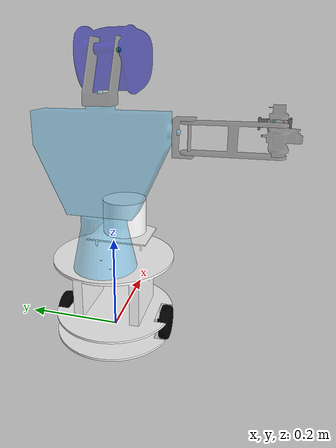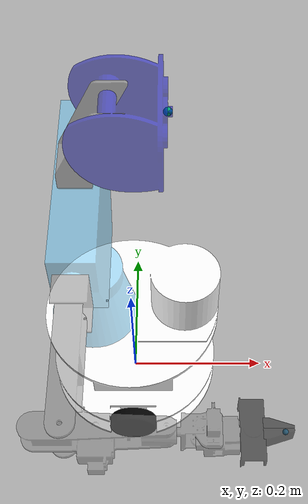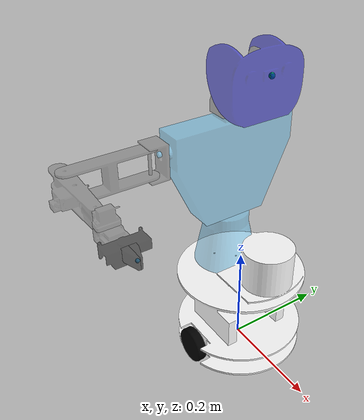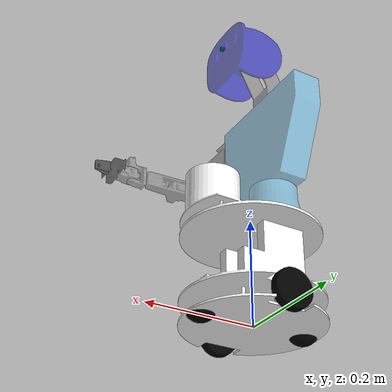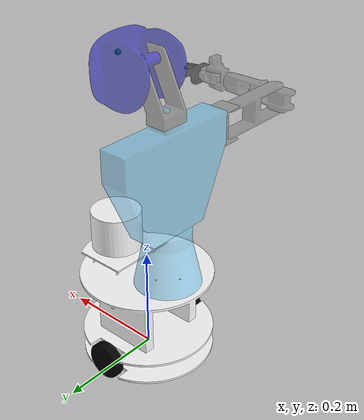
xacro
<?xml version="1.0"?>

<robot name="fratomo" xmlns:xacro="http://ros.org/wiki/xacro">
    <xacro:include filename="$(find fratomo_pro_description)/urdf/fratomo_base_macro.xacro" />
    <xacro:include filename="$(find fratomo_pro_description)/urdf/fratomo_torso_macro.xacro" />

    <xacro:property name="CAMERA" value="True"/>
    <xacro:property name="LIDAR" value="True"/>
    <xacro:property name="DEPTH" value="True"/>

    <!-- Diff Drive Robot Base  -->
    <xacro:fratomo_base />
     <!-- Robot Torso  -->
    <xacro:fratomo_torso parent="base_link"/>

    <!-- Head CAMERA Sensor -->
    <xacro:if value="${CAMERA}" >
        <!--Gazebo y-right/z-up camera frame is inconsistent with rviz/opencv x-right/y-down frame/-->
        <joint name="camViewFix" type="fixed">
            <parent link="camera"/>
            <child link="camera_view"/>
            <origin rpy="0 -1.57075 1.57075"  xyz="0.0 0.0 0.0 "/>
        </joint>
        <link name="camera_view"/>
        <gazebo reference="camera_view">
            <sensor type="camera" name="camera1">
                <update_rate>30.0</update_rate>
                <camera name="head">
                <horizontal_fov>1.3962634</horizontal_fov>
                <image>
                  <width>800</width>
                  <height>600</height>
                  <format>R8G8B8</format>
                </image>
                <clip>
                  <near>0.02</near>
                  <far>300</far>
                </clip>
                <noise>
                  <type>gaussian</type>
                  <mean>0.0</mean>
                  <stddev>0.007</stddev>
                </noise>
                </camera>

                <plugin name="camera_controller" filename="libgazebo_ros_camera.so">
                <alwaysOn>true</alwaysOn>
                <updateRate>0.0</updateRate>
                <cameraName>/headCam</cameraName>
                <imageTopicName>image_raw</imageTopicName>
                <cameraInfoTopicName>camera_info</cameraInfoTopicName>
                <frameName>camera_view</frameName>
                <hackBaseline>0.07</hackBaseline>
                <distortionK1>0.0</distortionK1>
                <distortionK2>0.0</distortionK2>
                <distortionK3>0.0</distortionK3>
                <distortionT1>0.0</distortionT1>
                <distortionT2>0.0</distortionT2>
                </plugin>
            </sensor>
        </gazebo>
    </xacro:if>

    <!-- LIDAR Sensor -->
     <xacro:if value="${LIDAR}" >

        <!--publish laser frame on the base -->
        <joint name="laser_joint" type="fixed">
            <parent link="base_link"/>
            <child link="laser_frame"/>
            <origin rpy="0 ${M_PI} ${M_PI}"  xyz="0.075 0.0 0.265 "/>
        </joint>
        <link name="laser_frame"/>

        <gazebo reference="laser_frame">
            <sensor type="ray" name="head_hokuyo_sensor">
                <pose>0 0 0 0 0 0</pose>
                <visualize>false</visualize>
                <update_rate>40</update_rate>
                <ray>
                    <scan>
                      <horizontal>
                        <samples>720</samples>
                        <resolution>1</resolution>
                        <min_angle>-${M_PI} </min_angle>
                        <max_angle>${M_PI} </max_angle>
                      </horizontal>
                    </scan>
                    <range>
                      <min>0.8</min>
                      <max>30.0</max>
                      <resolution>0.01</resolution>
                    </range>
                    <noise>
                      <type>gaussian</type>
                      <mean>0.0</mean>
                      <stddev>0.01</stddev>
                    </noise>
                </ray>
                <plugin name="gazebo_ros_head_hokuyo_controller" filename="libgazebo_ros_laser.so">
                    <topicName>/laser/scan</topicName>
                    <frameName>laser_frame</frameName>
                </plugin>
            </sensor>
        </gazebo>
    </xacro:if>

 <!-- RGBD Sensor -->
    <xacro:if value="${DEPTH}" >

        <!--publish rgbd frame on the base -->
        <joint name="rgbd_joint" type="fixed">
            <parent link="camera_view"/>
            <child link="rgbd_frame"/>
            <origin rpy="0 0 0"  xyz=" 0 0 0"/>
        </joint>
        <link name="rgbd_frame"/>
        <!-- Fixing opitcal frame problem -->
        <joint name="rgbd__optical_joint" type="fixed">
            <parent link="rgbd_frame"/>
            <child link="rgbd_optical_frame"/>
            <origin rpy="-${M_PI_2} 0 -${M_PI_2} "  xyz=" 0 0 0"/>
        </joint>
        <link name="rgbd_optical_frame"/>

        <gazebo reference="rgbd_frame">
         <sensor type="depth" name="$depth_camera">
            <always_on>true</always_on>
            <update_rate>30.0</update_rate>
            <camera>
              <horizontal_fov>2</horizontal_fov>
              <image>
                <format>L8</format>
                <width>640</width>
                <height>480</height>
              </image>
              <clip>
                <near>0.01</near>
                <far>100</far>
              </clip>
            </camera>
            <plugin name="depth_camera_plugin" filename="libgazebo_ros_openni_kinect.so">
              <alwaysOn>true</alwaysOn>
              <baseline>0.11</baseline>
              <updateRate>30.0</updateRate>
              <cameraName>depth_camera</cameraName>
              <imageTopicName>depth_camera/image_raw</imageTopicName>
              <cameraInfoTopicName>depth_camera/camera_info</cameraInfoTopicName>
              <depthImageTopicName>depth/disparity</depthImageTopicName>
              <depthImageCameraInfoTopicName>depth/camera_info</depthImageCameraInfoTopicName>
              <pointCloudTopicName>depth/points</pointCloudTopicName>
              <frameName>rgbd_optical_frame</frameName>
              <pointCloudCutoff>0.5</pointCloudCutoff>
              <distortionK1>0.0</distortionK1>
              <distortionK2>0.0</distortionK2>
              <distortionK3>0.0</distortionK3>
              <distortionT1>0.0</distortionT1>
              <distortionT2>0.0</distortionT2>
            </plugin>
          </sensor>
        </gazebo>
    </xacro:if>

</robot>

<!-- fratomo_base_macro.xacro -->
<robot name="fratomo_base_macro" xmlns:xacro="http://www.ros.org/wiki/xacro">

  <!--All units in m-kg-s-radians unit system -->
  <xacro:property name="M_PI" value="3.1415926535897931" />
  <xacro:property name="M_PI_2" value="1.570796327" />
  <xacro:property name="DEG_TO_RAD" value="0.017453293" />

	<!--Material Definition-->
	<material name="Black">
	  <color rgba="0.0 0.0 0.0 1.0"/>
	</material>

  <material name="Red">
  	<color rgba="0.8 0.0 0.0 1.0"/>
  </material>

  <material name="White">
    <color rgba="1.0 1.0 1.0 1.0"/>
  </material>

  <material name="Blue">
    <color rgba="0.0 0.0 0.8 1.0"/>
  </material>

  <!-- Base properties -->
	<xacro:property name="base_height" value="0.25" />
  <xacro:property name="base_radius" value="0.113" />
  <xacro:property name="base_mass" value="5" />
  <xacro:property name="wheel_mass" value="2.5" />
  <xacro:property name="wheel_radius" value="0.0375" />

  <xacro:macro name="cylinder_inertia" params="m r h">
    <inertia  ixx="${m*(3*r*r+h*h)/12}" ixy = "0" ixz = "0"
              iyy="${m*(3*r*r+h*h)/12}" iyz = "0"
              izz="${m*r*r/2}" />
  </xacro:macro>

  <!-- WHOLE BASE MACRO-->
  <xacro:macro name="fratomo_base" > <!--fb : front, back ; lr: left, right -->

      <!--Actual body/chassis of the robot-->
    <link name="base_link">
      <inertial>
          <inertia ixx="1.0" ixy="0.0" ixz="0.0" iyy="1.0" iyz="0.0" izz="1.0"/>
        <mass value="${base_mass}" />
        <origin xyz="0 0 0" />
        <cylinder_inertia  m="${base_mass}" r="${base_radius}" h="${base_height}" />
      </inertial>
      <visual>
        <geometry>
          <mesh filename="package://fratomo_pro_description/meshes/base.stl" scale="0.001 0.001 0.001 "/>
        </geometry>
        <material name="White"/>
        <origin rpy="0 0 1.57075" xyz="0 0 0"/>
      </visual>
      <collision>
        <origin xyz="0 0 0" rpy="0 0 0 " />
        <geometry>
          <mesh filename="package://fratomo_pro_description/meshes/base.stl" scale="0.001 0.001 0.001 "/>
        </geometry>
        <origin rpy="0 0 1.57075" xyz="0 0 0"/>
      </collision>
    </link>

    <link name="caster_front_link">
      <visual>
        <geometry>
          <mesh filename="package://fratomo_pro_description/meshes/casterWheel.stl" scale="0.001 0.001 0.001 "/>
        </geometry>
        <material name="Black"/>
        <origin rpy="0 0 0" xyz="0 0 0"/>
      </visual>
      <collision>
        <geometry>
          <mesh filename="package://fratomo_pro_description/meshes/casterWheel.stl" scale="0.001 0.001 0.001 "/>
        </geometry>
        <origin rpy="0 0 0" xyz="0 0 0"/>
      </collision>
      <inertial>
        <mass value="0.5"/>
        <origin xyz="0 0 0" />
          <inertia  ixx="0.001" ixy="0.0" ixz="0.0"
                    iyy="0.001" iyz="0.0"
                    izz="0.001" />
      </inertial>
    </link>

    <link name="caster_rear_link">
      <visual>
        <geometry>
          <mesh filename="package://fratomo_pro_description/meshes/casterWheel.stl" scale="0.001 0.001 0.001 "/>
        </geometry>
        <material name="Black"/>
        <origin rpy="0 0 0" xyz="0 0 0"/>
      </visual>
      <collision>
        <geometry>
          <mesh filename="package://fratomo_pro_description/meshes/casterWheel.stl" scale="0.001 0.001 0.001 "/>
        </geometry>
        <origin rpy="0 0 0" xyz="0 0 0"/>
      </collision>
      <inertial>
        <mass value="0.5"/>
        <origin xyz="0 0 0" />
          <inertia  ixx="0.001" ixy="0.0" ixz="0.0"
                    iyy="0.001" iyz="0.0"
                    izz="0.001" />
      </inertial>
    </link>

    <link name="left_wheel_link">
      <visual>
        <geometry>
          <mesh filename="package://fratomo_pro_description/meshes/wheel.stl" scale="0.001 0.001 0.001 "/>
        </geometry>
        <material name="Black"/>
        <origin rpy="0 0 0" xyz="0 0 0"/>
      </visual>
      <collision>
        <geometry>
          <mesh filename="package://fratomo_pro_description/meshes/wheel.stl" scale="0.001 0.001 0.001 "/>
        </geometry>
        <origin rpy="0 0 0" xyz="0 0 0"/>
      </collision>
      <inertial>
        <mass value="${wheel_mass}" />
        <origin xyz="0 0 0" />
        <inertia ixx="0.001" ixy="0.0" ixz="0.0"
               iyy="0.001" iyz="0.0"
               izz="0.001" />
      </inertial>
    </link>

    <link name="right_wheel_link">
      <visual>
        <geometry>
          <mesh filename="package://fratomo_pro_description/meshes/wheel.stl" scale="0.001 0.001 0.001 "/>
        </geometry>
        <material name="Black"/>
        <origin rpy="0 0 0" xyz="0 0 0"/>
      </visual>
      <collision>
        <geometry>
          <mesh filename="package://fratomo_pro_description/meshes/wheel.stl" scale="0.001 0.001 0.001 "/>
        </geometry>
        <origin rpy="0 0 0" xyz="0 0 0"/>
      </collision>
      <inertial>
        <mass value="${wheel_mass}" />
        <origin xyz="0 0 0" />
        <inertia ixx="0.001" ixy="0.0" ixz="0.0"
               iyy="0.001" iyz="0.0"
               izz="0.001" />
      </inertial>
    </link>

    <joint name="caster_front_joint" type="fixed" >
      <parent link="base_link" />
      <child link="caster_front_link" />
       <origin rpy="0 0 0" xyz="0.1 0 0.002"/>
    </joint>

     <joint name="caster_frear_joint" type="fixed" >
      <parent link="base_link" />
      <child link="caster_rear_link" />
       <origin rpy="0 0 0" xyz="-0.1 0 0.002"/>
    </joint>

    <joint name="left_wheel_joint" type="continuous">
      <parent link="base_link"/>
      <child link="left_wheel_link"/>
      <origin rpy="${M_PI_2} 0 0" xyz="0 0.113 0.023"/>
      <axis xyz="0 0 -1" rpy="0 0 0" />
      <limit effort="100" velocity="100"/>
      <joint_properties damping="0.5" friction="0.01"/>
    </joint>

    <joint name="right_wheel_joint" type="continuous">
      <parent link="base_link"/>
      <child link="right_wheel_link"/>
      <origin rpy="${-M_PI_2} 0 0" xyz="0 -0.113 0.023"/>
      <axis xyz="0 0 1" rpy="0 0 0" />
      <limit effort="100" velocity="100"/>
      <joint_properties damping="0.5" friction="0.01"/>
    </joint>

    <gazebo reference="left_wheel_link">
      <mu1 value="1.0"/>
      <mu2 value="1.0"/>
      <kp  value="1000000.0" />
      <kd  value="1.0" />
      <fdir1 value="1 0 0"/>
      <material>Gazebo/Black</material>
      <turnGravityOff>false</turnGravityOff>
    </gazebo>

     <gazebo reference="right_wheel_link">
      <mu1 value="1.0"/>
      <mu2 value="1.0"/>
      <kp  value="1000000.0" />
      <kd  value="1.0" />
      <fdir1 value="1 0 0"/>
      <material>Gazebo/Black</material>
      <turnGravityOff>false</turnGravityOff>
    </gazebo>

    <gazebo reference="caster_rear_link">
      <material>Gazebo/Grey</material>
    </gazebo>

    <gazebo reference="caster_front_link">
      <material>Gazebo/Grey</material>
    </gazebo>

    <!-- Transmission is important to link the joints and the controller -->
    <transmission name="left_wheel_joint_trans">
      <type>transmission_interface/SimpleTransmission</type>
      <joint name="left_wheel_joint" />
      <actuator name="left_wheel_joint_motor">
        <hardwareInterface>EffortJointInterface</hardwareInterface>
        <mechanicalReduction>1</mechanicalReduction>
      </actuator>
    </transmission>

    <transmission name="right_wheel_joint_trans">
      <type>transmission_interface/SimpleTransmission</type>
      <joint name="right_wheel_joint" />
      <actuator name="right_wheel_joint_motor">
        <hardwareInterface>EffortJointInterface</hardwareInterface>
        <mechanicalReduction>1</mechanicalReduction>
      </actuator>
    </transmission>

     <!-- Differential drive controller  -->
  <gazebo>
    <plugin name="differential_drive_controller" filename="libgazebo_ros_diff_drive.so">
      <legacyMode>true</legacyMode>
      <rosDebugLevel>Debug</rosDebugLevel>
      <publishWheelTF>true</publishWheelTF>
      <robotNamespace>/</robotNamespace>
      <publishTf>1</publishTf>
      <publishWheelJointState>true</publishWheelJointState>
      <alwaysOn>true</alwaysOn>
      <updateRate>100.0</updateRate>
      <leftJoint>left_wheel_joint</leftJoint>
      <rightJoint>right_wheel_joint</rightJoint>
      <wheelSeparation>${2*base_radius}</wheelSeparation>
      <wheelDiameter>${2*wheel_radius}</wheelDiameter>
      <broadcastTF>1</broadcastTF>
      <wheelTorque>30</wheelTorque>
      <wheelAcceleration>1.8</wheelAcceleration>
      <commandTopic>cmd_vel</commandTopic>
      <odometryFrame>odom</odometryFrame>
      <odometryTopic>odom</odometryTopic>
      <robotBaseFrame>base_link</robotBaseFrame>
    </plugin>
  </gazebo>

   </xacro:macro>
</robot>

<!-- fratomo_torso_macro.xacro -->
<robot name="fratomo_torso_macro" xmlns:xacro="http://www.ros.org/wiki/xacro">

  <!--All units in m-kg-s-radians unit system -->
  <xacro:property name="M_PI" value="3.1415926535897931" />
  <xacro:property name="M_PI_2" value="1.570796327" />
  <xacro:property name="DEG_TO_RAD" value="0.017453293" />
  <!-- propertys for joint controllers-->
  <xacro:property name="safety_controller_k_pos" value="100" />
  <xacro:property name="safety_controller_k_vel" value="2" />
  <xacro:property name="joint_damping" value="0.5" />
  <xacro:property name="max_effort" value="300"/>
  <xacro:property name="max_velocity" value="10"/>

	<!--Material Definition-->

   <material name="gray">
    <color rgba="0.5 0.5 0.5 0.5"/>
  </material>

  <material name="black">
    <color rgba="0 0 0 0.5"/>
  </material>

  <material name="purple">
    <color rgba="0.4 0.8 1 0.5"/>
  </material>

  <material name="white">
    <color rgba="1 1 1 0.5"/>
  </material>

  <material name="blue">
    <color rgba="0 0 0.8 0.5"/>
  </material>

  <!--Little helper macros to define the inertia matrix needed for links.-->
  <!--Cuboid-->
  <xacro:macro name="cuboid_inertia" params="width height length mass">
    <inertia ixx="${mass * (height * height + length * length) / 12}"
             iyy="${mass * (width * width + length * length) / 12}"
             izz="${mass * (width * width + height * height) / 12}"
             ixy="0" iyz="0" ixz="0"/>
  </xacro:macro>

  <!--Cylinder: length is along the z-axis! -->
  <xacro:macro name="cylinder_inertia" params="radius length mass">
    <inertia ixx="${mass * (3 * radius * radius + length * length) / 12}"
             izz="${mass * radius* radius / 2}"
             iyy="${mass * (3 * radius * radius + length * length) / 12}"
             ixy="0" iyz="0" ixz="0"/>
  </xacro:macro>
  <!--Trasmission macro for gazebo and controllers -->
  <xacro:macro name="transmission_block" params="joint_name">
      <transmission name="${joint_name}_tran1">
        <type>transmission_interface/SimpleTransmission</type>
        <joint name="${joint_name}">
          <hardwareInterface>hardware_interface/PositionJointInterface</hardwareInterface>
        </joint>
        <actuator name="${joint_name}_motor">
          <hardwareInterface>hardware_interface/PositionJointInterface</hardwareInterface>
          <mechanicalReduction>1</mechanicalReduction>
        </actuator>
      </transmission>
     </xacro:macro>

  <!-- WHOLE TORSO MACRO-->
  <xacro:macro name="fratomo_torso" params="parent" >

   <!-- links -->
    <link name="turnable">
      <visual>
        <geometry>
          <mesh filename="package://fratomo_pro_description/meshes/turnable.stl" scale="0.001 0.001 0.001 "/>
        </geometry>
        <material name="purple"/>
        <origin rpy="0 0 0" xyz="0 0 0"/>
      </visual>
      <collision>
        <geometry>
          <mesh filename="package://fratomo_pro_description/meshes/turnable.stl" scale="0.001 0.001 0.001 "/>
        </geometry>
        <origin rpy="0 0 0" xyz="0 0 0"/>
      </collision>
      <inertial>
        <xacro:cylinder_inertia radius="0.05" length="0.11" mass="1"/>
        <mass value="1" />
        <origin xyz="0 0 0.055" />
      </inertial>
    </link>

    <link name="torso">
      <visual>
        <geometry>
          <mesh filename="package://fratomo_pro_description/meshes/torso.stl" scale="0.001 0.001 0.001 "/>
        </geometry>
        <material name="purple"/>
        <origin rpy="0 0 0" xyz="0 0 0"/>
      </visual>
      <collision>
        <geometry>
          <mesh filename="package://fratomo_pro_description/meshes/torso.stl" scale="0.001 0.001 0.001 "/>
        </geometry>
        <origin rpy="0 0 0" xyz="0 0 0"/>
      </collision>
      <inertial>
        <xacro:cuboid_inertia width="0.05" height="0.130" length="0.2" mass="1"/>
        <mass value="1" />
        <origin xyz="0 0 0.05" />
      </inertial>
    </link>

    <link name="neck">
      <visual>
        <geometry>
          <mesh filename="package://fratomo_pro_description/meshes/neck.stl" scale="0.001 0.001 0.001 "/>
        </geometry>
        <material name="gray"/>
        <origin rpy="0 0 0" xyz="0 0 0"/>
      </visual>
      <collision>
        <geometry>
          <mesh filename="package://fratomo_pro_description/meshes/neck.stl" scale="0.001 0.001 0.001 "/>
        </geometry>
        <origin rpy="0 0 0" xyz="0 0 0"/>
      </collision>
      <inertial>
        <xacro:cuboid_inertia width="0.05" height="0.02" length="0.09" mass="1"/>
        <mass value="0.1" />
        <origin xyz="0.02 0 0.04" />
      </inertial>
    </link>

    <link name="head">
      <visual>
        <geometry>
          <mesh filename="package://fratomo_pro_description/meshes/head.stl" scale="0.001 0.001 0.001 "/>
        </geometry>
        <material name="blue"/>
        <origin rpy="0 -1.57075 0" xyz="0 0 0"/>
      </visual>
      <collision>
        <geometry>
          <mesh filename="package://fratomo_pro_description/meshes/head.stl" scale="0.001 0.001 0.001 "/>
        </geometry>
        <origin rpy="0 -1.57075 0" xyz="0 0 0"/>
      </collision>
      <inertial>
        <xacro:cuboid_inertia width="0.09" height="0.12" length="0.09" mass="0.2"/>
        <mass value="0.2" />
        <origin xyz="0.03 0 0.03" />
      </inertial>
    </link>

    <link name="shoulder">
      <visual>
        <geometry>
          <mesh filename="package://fratomo_pro_description/meshes/shoulder.stl" scale="0.001 0.001 0.001 "/>
        </geometry>
        <material name="gray"/>
        <origin rpy="3.14159 0 0" xyz="0 0 0"/>
      </visual>
      <collision>
        <geometry>
          <mesh filename="package://fratomo_pro_description/meshes/shoulder.stl" scale="0.001 0.001 0.001 "/>
        </geometry>
        <origin rpy="3.14159 0 0" xyz="0 0 0"/>
      </collision>
      <inertial>
        <xacro:cuboid_inertia width="0.058" height="0.03" length="0.066" mass="0.2"/>
        <mass value="0.2" />
        <origin xyz="0.00 0.01 0.03" />
      </inertial>

    </link>

    <link name="arm_l1">
      <visual>
        <geometry>
          <mesh filename="package://fratomo_pro_description/meshes/arm_l1.stl" scale="0.001 0.001 0.001 "/>
        </geometry>
        <material name="gray"/>
        <origin rpy="0 0 0" xyz="0 0 0"/>
      </visual>
      <collision>
        <geometry>
          <mesh filename="package://fratomo_pro_description/meshes/arm_l1.stl" scale="0.001 0.001 0.001 "/>
        </geometry>
        <origin rpy="0 0 0" xyz="0 0 0"/>
      </collision>
       <inertial>
        <xacro:cuboid_inertia width="0.045" height="0.144" length="0.02" mass="0.1"/>
        <mass value="0.1" />
        <origin xyz="0.00 -0.07 0.0" />
      </inertial>

    </link>

    <link name="forearm">
      <visual>
        <geometry>
          <mesh filename="package://fratomo_pro_description/meshes/forearm.stl" scale="0.001 0.001 0.001 "/>
        </geometry>
        <material name="gray"/>
        <origin rpy="0 3.14159 0" xyz="0.01822 0 0"/>
      </visual>
      <collision>
        <geometry>
          <mesh filename="package://fratomo_pro_description/meshes/forearm.stl" scale="0.001 0.001 0.001 "/>
        </geometry>
        <origin rpy="0 3.14159 0" xyz="0.01822 0 0"/>
      </collision>
      <inertial>
        <!--xacro:cuboid_inertia width="0.045" height="0.170" length="0.025" mass="0.3"/-->
        <inertia ixx="0.0001" ixy="0.000"  ixz="0.000"
                 iyy="0.0001" iyz="0.000"
                 izz="0.0001"/>
        <mass value="0.3" />
        <origin xyz="0.00 -0.04 0.0" />
      </inertial>
    </link>

    <link name="wrist_shaft">
      <visual>
        <geometry>
          <mesh filename="package://fratomo_pro_description/meshes/wrist_shaft.stl" scale="0.001 0.001 0.001 "/>
        </geometry>
        <material name="gray"/>
        <origin rpy="0 0 1.57075" xyz="-0.115 -0.0227 0"/>
      </visual>
      <collision>
        <geometry>
          <mesh filename="package://fratomo_pro_description/meshes/wrist_shaft.stl" scale="0.001 0.001 0.001 "/>
        </geometry>
        <origin rpy="0 0 1.57075" xyz="-0.115 -0.0227 0"/>
      </collision>
       <inertial>
        <!--xacro:cuboid_inertia width="0.015" height="0.05" length="0.020" mass="0.02"/-->
        <inertia ixx="0.0001" ixy="0.000"  ixz="0.000"
                 iyy="0.0001" iyz="0.000"
                 izz="0.0001"/>
        <mass value="0.02" />
        <origin xyz="0.008 0.0 0.0" />
      </inertial>
    </link>

    <link name="wrist">
      <visual>
        <geometry>
          <mesh filename="package://fratomo_pro_description/meshes/wrist.stl" scale="0.001 0.001 0.001 "/>
        </geometry>
        <material name="gray"/>
        <origin rpy="0 0 1.57075" xyz="-0.1503 -0.0227 0"/>
      </visual>
      <collision>
        <geometry>
          <mesh filename="package://fratomo_pro_description/meshes/wrist.stl" scale="0.001 0.001 0.001 "/>
        </geometry>
        <origin rpy="0 0 1.57075" xyz="-0.1503 -0.0227 0"/>
      </collision>
      <inertial>
        <!--xacro:cuboid_inertia width="0.040" height="0.05" length="0.04" mass="0.1"/-->
        <inertia ixx="0.0001" ixy="0.000"  ixz="0.000"
                 iyy="0.0001" iyz="0.000"
                 izz="0.0001"/>
        <mass value="0.1" />
        <origin xyz="0.0 0.01 0.0" />
      </inertial>
    </link>

    <link name="gripper">
      <visual>
        <geometry>
          <mesh filename="package://fratomo_pro_description/meshes/gripperBody.stl" scale="0.001 0.001 0.001 "/>
        </geometry>
        <material name="black"/>
        <origin rpy="0 0 1.57075" xyz="0 0 0"/>
      </visual>
      <collision>
        <geometry>
          <mesh filename="package://fratomo_pro_description/meshes/gripperBody.stl" scale="0.001 0.001 0.001 "/>
        </geometry>
        <origin rpy="0 0 1.57075" xyz="0 0 0"/>
      </collision>
       <inertial>
        <!--xacro:cuboid_inertia width="0.05" height="0.06" length="0.06" mass="0.2"/-->
        <inertia ixx="0.0001" ixy="0.000"  ixz="0.000"
                 iyy="0.0001" iyz="0.000"
                 izz="0.0001"/>
        <mass value="0.001" />
        <mass value="0.2" />
        <origin xyz="0.01 0.00 0.0" />
      </inertial>
    </link>

    <link name="finger_l">
      <visual>
        <geometry>
          <mesh filename="package://fratomo_pro_description/meshes/finger_l.stl" scale="0.001 0.001 0.001 "/>
        </geometry>
        <material name="black"/>
        <origin rpy="0 0 1.57075" xyz="0 0 0"/>
      </visual>
      <collision>
        <geometry>
          <mesh filename="package://fratomo_pro_description/meshes/finger_l.stl" scale="0.001 0.001 0.001 "/>
        </geometry>
        <origin rpy="0 0 1.57075" xyz="0 0 0"/>
      </collision>
       <inertial>
        <inertia ixx="0.0001" ixy="0.000"  ixz="0.000"
                 iyy="0.0001" iyz="0.000"
                 izz="0.0001"/>
        <mass value="0.001" />
        <origin xyz="0 0 0" />
      </inertial>
    </link>

    <link name="finger_r">
      <visual>
        <geometry>
          <mesh filename="package://fratomo_pro_description/meshes/finger_r.stl" scale="0.001 0.001 0.001 "/>
        </geometry>
        <material name="black"/>
        <origin rpy="0 0 1.57075" xyz="0 0 0"/>
      </visual>
      <collision>
        <geometry>
          <mesh filename="package://fratomo_pro_description/meshes/finger_r.stl" scale="0.001 0.001 0.001 "/>
        </geometry>
        <origin rpy="0 0 1.57075" xyz="0 0 0"/>
      </collision>
      <inertial>
        <inertia ixx="0.0001" ixy="0.000"  ixz="0.000"
                 iyy="0.0001" iyz="0.000"
                 izz="0.0001"/>
        <mass value="0.001" />
        <origin xyz="0 0 0" />
      </inertial>
    </link>

<!-- dummy camera, ee links -->
    <link name="end_effector">
      <visual>
        <geometry>
          <sphere radius="0.003"/>
        </geometry>
      </visual>
    </link>

    <link name="camera">
      <visual>
        <geometry>
          <sphere radius="0.005"/>
        </geometry>
      </visual>
    </link>

<!-- joints -->
    <joint name="base_to_turnable" type="fixed">
        <parent link="${parent}"/>
        <child link="turnable"/>
        <origin xyz="-0.052 0 0.169"/>
    </joint>

    <joint name="turnable_to_torso" type="revolute">
        <parent link="turnable"/>
        <child link="torso"/>
        <origin xyz="0 0 0.11"/>
        <axis xyz="0 0 1"/>
        <limit effort="10.0" velocity="1" lower="-1.57075" upper="1.57075"/>
        <safety_controller soft_lower_limit="-1.57075"
                           soft_upper_limit="1.57075"
                           k_position="${safety_controller_k_pos}"
                           k_velocity="${safety_controller_k_vel}"/>
       <dynamics damping="${joint_damping*6}"/>
    </joint>

    <joint name="torso_to_neck" type="revolute">
        <parent link="torso"/>
        <child link="neck"/>
        <origin xyz="0 0 0.2"/>
        <axis xyz="0 0 1"/>
        <limit effort="10.0" velocity="1" lower="-1.57075" upper="1.57075"/>
        <safety_controller soft_lower_limit="-1.57075"
                           soft_upper_limit="1.57075"
                           k_position="${safety_controller_k_pos}"
                           k_velocity="${safety_controller_k_vel}"/>
       <dynamics damping="${joint_damping}"/>
    </joint>

    <joint name="neck_to_head" type="revolute">
        <parent link="neck"/>
        <child link="head"/>
        <origin rpy="0 1.57075 0" xyz="0.041 0 0.095"/>
        <axis xyz="0 1 0"/>
        <limit effort="10.0" velocity="1" lower="-1.57075" upper="0.78539"/>
        <safety_controller soft_lower_limit="-1.57075"
                           soft_upper_limit="0.78539"
                           k_position="${safety_controller_k_pos}"
                           k_velocity="${safety_controller_k_vel}"/>
       <dynamics damping="${joint_damping}"/>
    </joint>

    <joint name="head_to_camera" type="fixed">
        <parent link="head"/>
        <child link="camera"/>
        <origin rpy="0 0 -1.57075"  xyz="0.0 0.0 0.065 "/>
    </joint>

    <joint name="torso_to_shoulder" type="revolute">
        <parent link="torso"/>
        <child link="shoulder"/>
        <origin rpy="3.14159 1.57075 0" xyz="0 -0.1325 0.150"/>
        <axis xyz="0 1 0"/>
        <limit effort="10.0" velocity="1" upper="1.57075" lower="-1.57075"/>
         <safety_controller soft_lower_limit="-1.57075"
                           soft_upper_limit="1.57075"
                           k_position="${safety_controller_k_pos}"
                           k_velocity="${safety_controller_k_vel}"/>
       <dynamics damping="${joint_damping}"/>
    </joint>

    <joint name="shoulder_to_arm_l1" type="revolute">
        <parent link="shoulder"/>
        <child link="arm_l1"/>
        <origin rpy="3.14159 0 0" xyz="0.0 0.026 0.0"/>
        <axis xyz="1 0 0"/>
        <limit effort="10.0" velocity="1" lower="-1.57075" upper="0.78539"/>
         <safety_controller soft_lower_limit="-1.57075"
                           soft_upper_limit="0.78539"
                           k_position="${safety_controller_k_pos}"
                           k_velocity="${safety_controller_k_vel}"/>
       <dynamics damping="${joint_damping}"/>
    </joint>

    <joint name="arm_l1_to_forearm" type="revolute">
        <parent link="arm_l1"/>
        <child link="forearm"/>
        <origin rpy="-1.57075 0 0" xyz="0.0 -0.144 0.0"/>
        <axis xyz="1 0 0"/>
        <limit effort="10.0" velocity="1" upper="1.57075" lower="-1.57075"/>
        <safety_controller soft_lower_limit="-1.57075"
                           soft_upper_limit="1.57075"
                           k_position="${safety_controller_k_pos}"
                           k_velocity="${safety_controller_k_vel}"/>
       <dynamics damping="${joint_damping}"/>
    </joint>

    <joint name="forearm_to_wrist_shaft" type="revolute">
        <parent link="forearm"/>
        <child link="wrist_shaft"/>
        <origin rpy="0 0 -1.57075" xyz="-0.00448 -0.11507 0.0"/>
        <axis xyz="1 0 0"/>
        <limit effort="10.0" velocity="1" upper="1.57075" lower="-1.57075"/>
        <safety_controller soft_lower_limit="-1.57075"
                           soft_upper_limit="1.57075"
                           k_position="${safety_controller_k_pos}"
                           k_velocity="${safety_controller_k_vel}"/>
       <dynamics damping="${joint_damping}"/>
    </joint>

    <joint name="wrist_shaft_to_wrist" type="revolute">
        <parent link="wrist_shaft"/>
        <child link="wrist"/>
        <origin rpy="0 0 0" xyz="0.03534 0.0 0.0"/>
        <axis xyz="0 1 0"/>
        <limit effort="10.0" velocity="1" upper="1.57075" lower="-1.57075"/>
        <safety_controller soft_lower_limit="-1.57075"
                           soft_upper_limit="1.57075"
                           k_position="${safety_controller_k_pos}"
                           k_velocity="${safety_controller_k_vel}"/>
       <dynamics damping="${joint_damping}"/>
    </joint>

    <joint name="wrist_to_gripper" type="revolute">
        <parent link="wrist"/>
        <child link="gripper"/>
        <origin rpy="1.57075 0 0" xyz="0.0284 0.0 0.0"/>
        <axis xyz="1 0 0"/>
        <limit effort="10.0" velocity="1" upper="1.57075" lower="-1.57075"/>
        <safety_controller soft_lower_limit="-1.57075"
                           soft_upper_limit="1.57075"
                           k_position="${safety_controller_k_pos}"
                           k_velocity="${safety_controller_k_vel}"/>
       <dynamics damping="${joint_damping}"/>
    </joint>

    <joint name="gripper_to_end_effector" type="fixed">
        <parent link="gripper"/>
        <child link="end_effector"/>
        <origin rpy="0 0 0" xyz="0.045 0.0 0.0"/>
    </joint>

    <joint name="gripper_to_finger_l" type="prismatic">
        <parent link="gripper"/>
        <child link="finger_l"/>
        <origin rpy="0 0 0" xyz="0 0 0"/>
        <axis xyz="0 1 0"/>
        <limit effort="10.0" velocity="1" upper="0.02" lower="0"/>
        <safety_controller soft_lower_limit="0"
                           soft_upper_limit="0.02"
                           k_position="${safety_controller_k_pos}"
                           k_velocity="${safety_controller_k_vel}"/>
       <dynamics damping="${joint_damping}"/>
    </joint>

    <joint name="gripper_to_finger_r" type="prismatic">
        <parent link="gripper"/>
        <child link="finger_r"/>
        <origin rpy="0 0 0" xyz="0 0 0"/>
        <axis xyz="0 1 0"/>
        <limit effort="10.0" velocity="1" upper="0.02" lower="0"/>
        <mimic joint="gripper_to_finger_l" multiplier="-1" offset ="0"/>
        <safety_controller soft_lower_limit="0"
                           soft_upper_limit="0.02"
                           k_position="${safety_controller_k_pos}"
                           k_velocity="${safety_controller_k_vel}"/>
       <dynamics damping="${joint_damping}"/>
    </joint>

    <xacro:transmission_block joint_name="turnable_to_torso"/>
    <xacro:transmission_block joint_name="torso_to_neck"/>
    <xacro:transmission_block joint_name="neck_to_head"/>
    <xacro:transmission_block joint_name="torso_to_shoulder"/>
    <xacro:transmission_block joint_name="shoulder_to_arm_l1"/>
    <xacro:transmission_block joint_name="arm_l1_to_forearm"/>
    <xacro:transmission_block joint_name="forearm_to_wrist_shaft"/>
    <xacro:transmission_block joint_name="wrist_shaft_to_wrist"/>
    <xacro:transmission_block joint_name="wrist_to_gripper"/>
    <xacro:transmission_block joint_name="gripper_to_finger_l"/>

    <gazebo>
      <plugin name="gazebo_ros_control" filename="libgazebo_ros_control.so">
        <robotNamespace>/fratomo</robotNamespace>
        <robotParam>fratomo_robot_description</robotParam>
        <robotSimType>gazebo_ros_control/DefaultRobotHWSim</robotSimType>
        <legacyModeNS>true</legacyModeNS>
      </plugin>
    </gazebo>

    <gazebo reference="turnable">
      <material>Gazebo/Blue</material>
    </gazebo>
    <gazebo reference="torso">
      <material>Gazebo/Orange</material>
    </gazebo>
    <gazebo reference="neck">
      <material>Gazebo/Grey</material>
    </gazebo>
    <gazebo reference="head">
      <material>Gazebo/Blue</material>
    </gazebo>
    <gazebo reference="shoulder">
      <material>Gazebo/Grey</material>
    </gazebo>
    <gazebo reference="arm_l1">
      <material>Gazebo/Grey</material>
    </gazebo>
    <gazebo reference="forearm">
      <material>Gazebo/Grey</material>
    </gazebo>
    <gazebo reference="wrist_shaft">
      <material>Gazebo/Grey</material>
    </gazebo>
    <gazebo reference="wrist">
      <material>Gazebo/Grey</material>
    </gazebo>
    <gazebo reference="gripper">
      <material>Gazebo/Black</material>
    </gazebo>
    <gazebo reference="finger_l">
      <material>Gazebo/Black</material>
    </gazebo>
    <gazebo reference="finger_r">
      <material>Gazebo/Black</material>
    </gazebo>

  </xacro:macro>
</robot>
